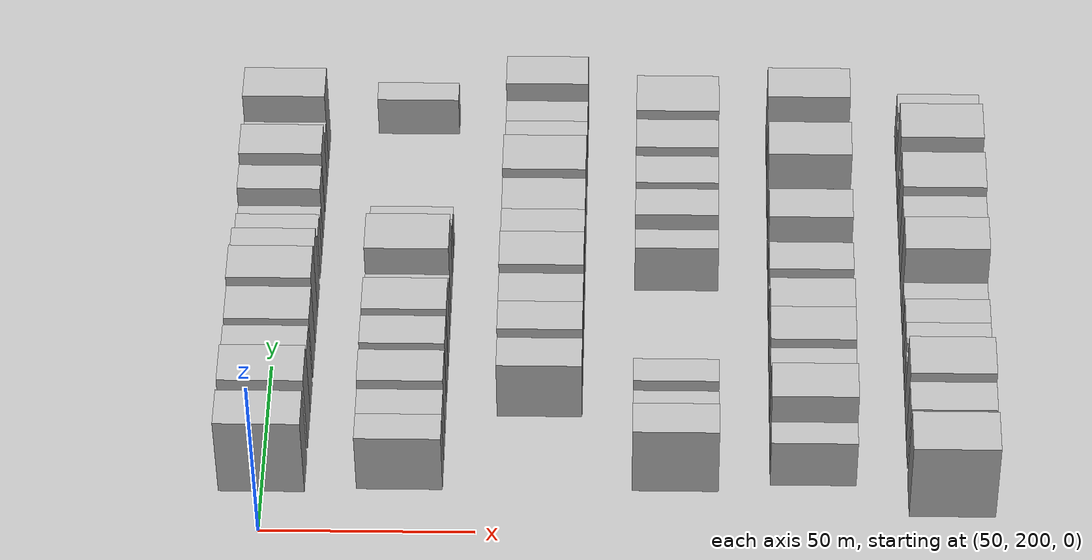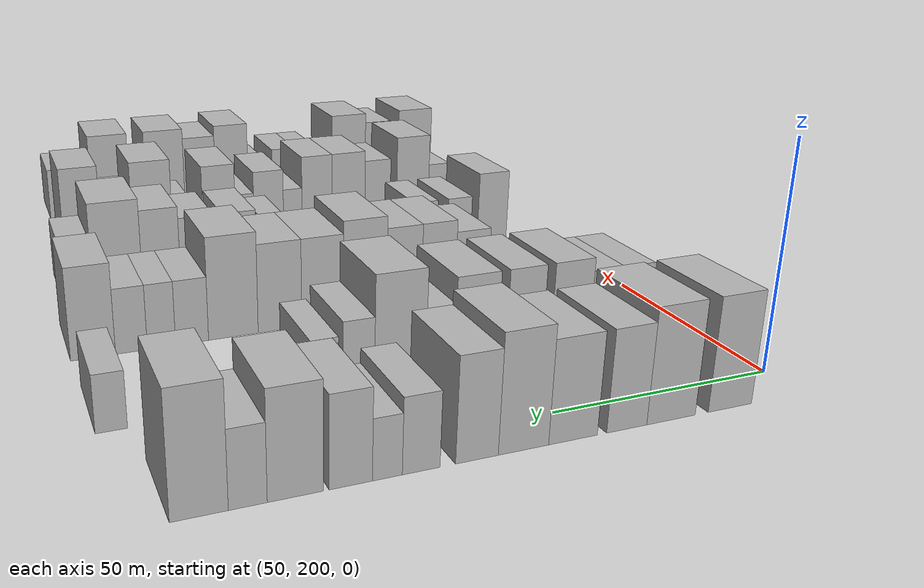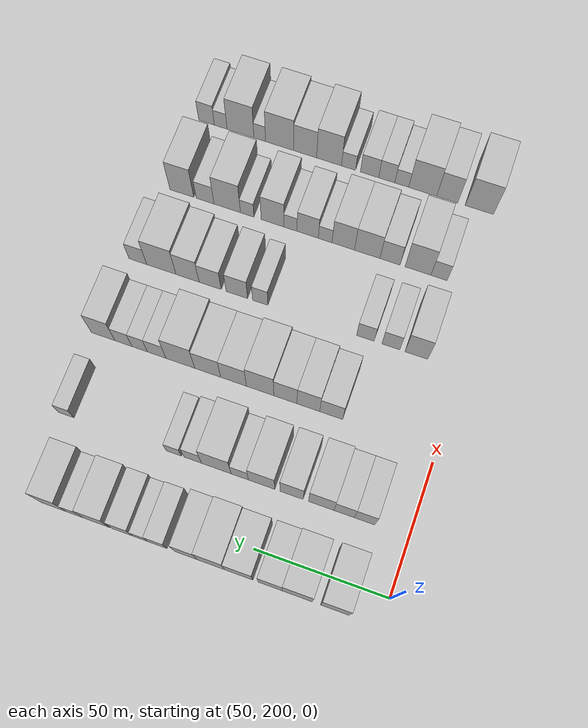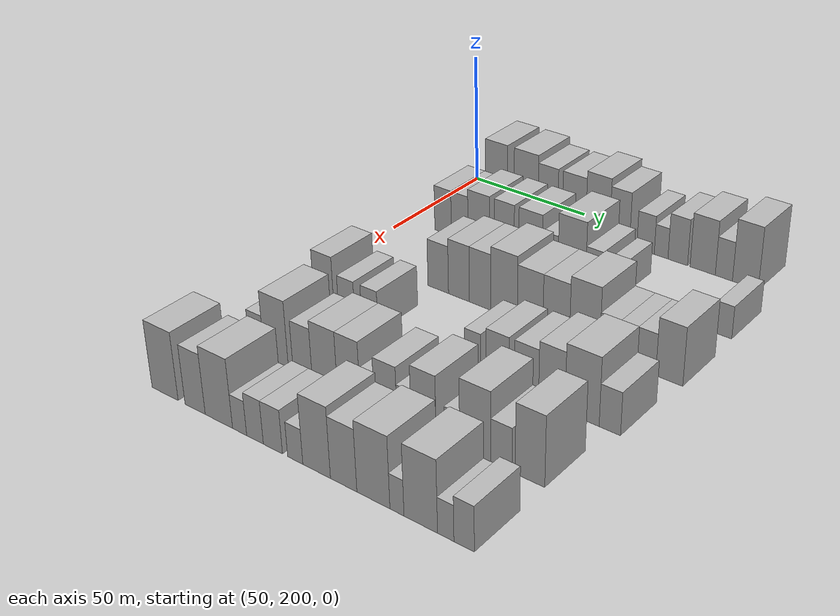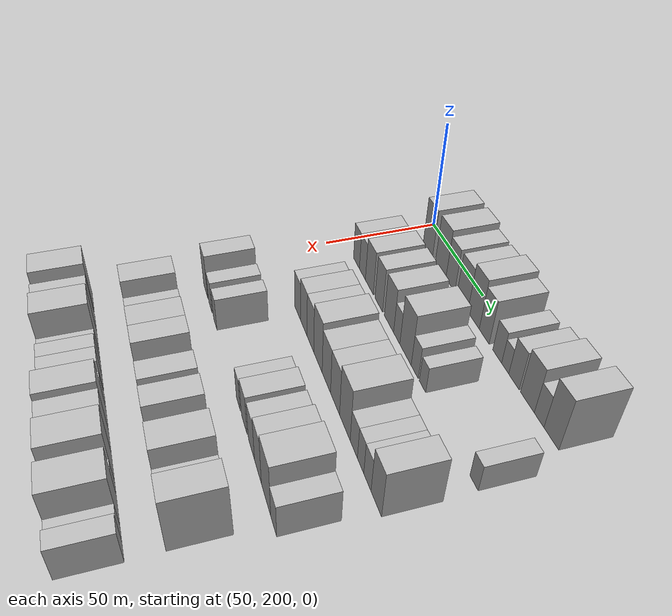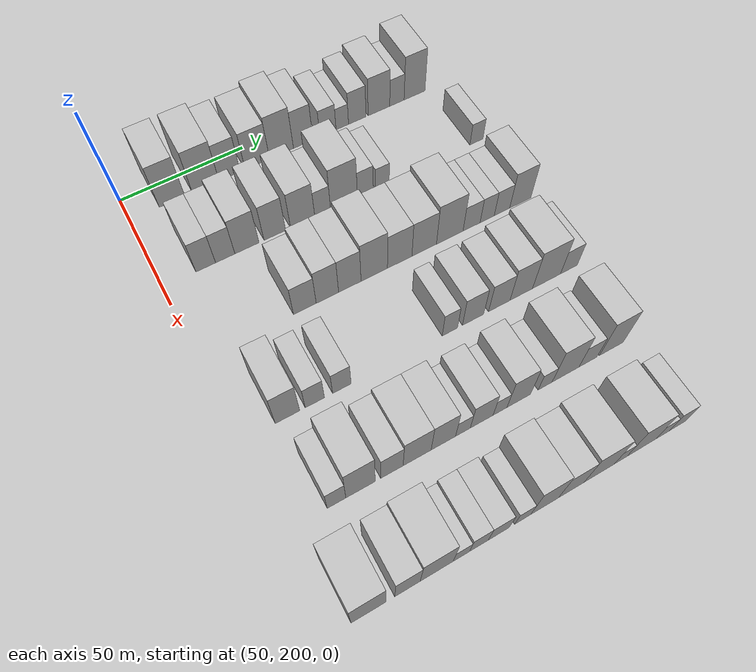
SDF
<sdf version="1.6">
 <world name="default">
  <model name="building_83">
   <static>1</static>
   <pose>50.0000 216.8281 0 0.000000 0.000000 0.000000</pose>
   <link name="link">
    <pose>0 0 12.00 0 0 0</pose>
    <collision name="collision"><geometry><box><size>20.0000 10.2045 24.0000</size></box></geometry></collision>
    <visual name="visual">
     <cast_shadows>0</cast_shadows>
     <geometry><box><size>20.0000 10.2045 24.0000</size></box></geometry>
     <material>
      <script>
       <uri>model://HANNAS_wall/materials/scripts</uri>
       <uri>model://HANNAS_wall/materials/textures</uri>
       <name>vrc/HANNAS_wall</name>
      </script>
     </material>
    </visual>
   </link>
  </model>
  <model name="building_84">
   <static>1</static>
   <pose>50.0000 230.3993 0 0.000000 0.000000 0.000000</pose>
   <link name="link">
    <pose>0 0 12.00 0 0 0</pose>
    <collision name="collision"><geometry><box><size>20.0000 10.9380 24.0000</size></box></geometry></collision>
    <visual name="visual">
     <cast_shadows>0</cast_shadows>
     <geometry><box><size>20.0000 10.9380 24.0000</size></box></geometry>
     <material>
      <script>
       <uri>model://HANNAS_wall/materials/scripts</uri>
       <uri>model://HANNAS_wall/materials/textures</uri>
       <name>vrc/HANNAS_wall</name>
      </script>
     </material>
    </visual>
   </link>
  </model>
  <model name="building_85">
   <static>1</static>
   <pose>50.0000 240.2554 0 0.000000 0.000000 0.000000</pose>
   <link name="link">
    <pose>0 0 10.50 0 0 0</pose>
    <collision name="collision"><geometry><box><size>20.0000 8.7741 21.0000</size></box></geometry></collision>
    <visual name="visual">
     <cast_shadows>0</cast_shadows>
     <geometry><box><size>20.0000 8.7741 21.0000</size></box></geometry>
     <material>
      <script>
       <uri>model://HANNAS_wall/materials/scripts</uri>
       <uri>model://HANNAS_wall/materials/textures</uri>
       <name>vrc/HANNAS_wall</name>
      </script>
     </material>
    </visual>
   </link>
  </model>
  <model name="building_86">
   <static>1</static>
   <pose>50.0000 251.7785 0 0.000000 0.000000 0.000000</pose>
   <link name="link">
    <pose>0 0 10.50 0 0 0</pose>
    <collision name="collision"><geometry><box><size>20.0000 10.2722 21.0000</size></box></geometry></collision>
    <visual name="visual">
     <cast_shadows>0</cast_shadows>
     <geometry><box><size>20.0000 10.2722 21.0000</size></box></geometry>
     <material>
      <script>
       <uri>model://HANNAS_wall/materials/scripts</uri>
       <uri>model://HANNAS_wall/materials/textures</uri>
       <name>vrc/HANNAS_wall</name>
      </script>
     </material>
    </visual>
   </link>
  </model>
  <model name="building_87">
   <static>1</static>
   <pose>50.0000 262.0372 0 0.000000 0.000000 0.000000</pose>
   <link name="link">
    <pose>0 0 12.00 0 0 0</pose>
    <collision name="collision"><geometry><box><size>20.0000 10.2452 24.0000</size></box></geometry></collision>
    <visual name="visual">
     <cast_shadows>0</cast_shadows>
     <geometry><box><size>20.0000 10.2452 24.0000</size></box></geometry>
     <material>
      <script>
       <uri>model://HANNAS_wall/materials/scripts</uri>
       <uri>model://HANNAS_wall/materials/textures</uri>
       <name>vrc/HANNAS_wall</name>
      </script>
     </material>
    </visual>
   </link>
  </model>
  <model name="building_88">
   <static>1</static>
   <pose>50.0000 271.3645 0 0.000000 0.000000 0.000000</pose>
   <link name="link">
    <pose>0 0 10.50 0 0 0</pose>
    <collision name="collision"><geometry><box><size>20.0000 8.4094 21.0000</size></box></geometry></collision>
    <visual name="visual">
     <cast_shadows>0</cast_shadows>
     <geometry><box><size>20.0000 8.4094 21.0000</size></box></geometry>
     <material>
      <script>
       <uri>model://HANNAS_wall/materials/scripts</uri>
       <uri>model://HANNAS_wall/materials/textures</uri>
       <name>vrc/HANNAS_wall</name>
      </script>
     </material>
    </visual>
   </link>
  </model>
  <model name="building_89">
   <static>1</static>
   <pose>50.0000 282.1505 0 0.000000 0.000000 0.000000</pose>
   <link name="link">
    <pose>0 0 7.50 0 0 0</pose>
    <collision name="collision"><geometry><box><size>20.0000 7.1627 15.0000</size></box></geometry></collision>
    <visual name="visual">
     <cast_shadows>0</cast_shadows>
     <geometry><box><size>20.0000 7.1627 15.0000</size></box></geometry>
     <material>
      <script>
       <uri>model://HANNAS_wall/materials/scripts</uri>
       <uri>model://HANNAS_wall/materials/textures</uri>
       <name>vrc/HANNAS_wall</name>
      </script>
     </material>
    </visual>
   </link>
  </model>
  <model name="building_90">
   <static>1</static>
   <pose>50.0000 288.5086 0 0.000000 0.000000 0.000000</pose>
   <link name="link">
    <pose>0 0 6.00 0 0 0</pose>
    <collision name="collision"><geometry><box><size>20.0000 5.5535 12.0000</size></box></geometry></collision>
    <visual name="visual">
     <cast_shadows>0</cast_shadows>
     <geometry><box><size>20.0000 5.5535 12.0000</size></box></geometry>
     <material>
      <script>
       <uri>model://HANNAS_wall/materials/scripts</uri>
       <uri>model://HANNAS_wall/materials/textures</uri>
       <name>vrc/HANNAS_wall</name>
      </script>
     </material>
    </visual>
   </link>
  </model>
  <model name="building_91">
   <static>1</static>
   <pose>50.0000 295.1970 0 0.000000 0.000000 0.000000</pose>
   <link name="link">
    <pose>0 0 9.00 0 0 0</pose>
    <collision name="collision"><geometry><box><size>20.0000 7.8232 18.0000</size></box></geometry></collision>
    <visual name="visual">
     <cast_shadows>0</cast_shadows>
     <geometry><box><size>20.0000 7.8232 18.0000</size></box></geometry>
     <material>
      <script>
       <uri>model://HANNAS_wall/materials/scripts</uri>
       <uri>model://HANNAS_wall/materials/textures</uri>
       <name>vrc/HANNAS_wall</name>
      </script>
     </material>
    </visual>
   </link>
  </model>
  <model name="building_92">
   <static>1</static>
   <pose>50.0000 305.0303 0 0.000000 0.000000 0.000000</pose>
   <link name="link">
    <pose>0 0 10.50 0 0 0</pose>
    <collision name="collision"><geometry><box><size>20.0000 9.8435 21.0000</size></box></geometry></collision>
    <visual name="visual">
     <cast_shadows>0</cast_shadows>
     <geometry><box><size>20.0000 9.8435 21.0000</size></box></geometry>
     <material>
      <script>
       <uri>model://HANNAS_wall/materials/scripts</uri>
       <uri>model://HANNAS_wall/materials/textures</uri>
       <name>vrc/HANNAS_wall</name>
      </script>
     </material>
    </visual>
   </link>
  </model>
  <model name="building_93">
   <static>1</static>
   <pose>50.0000 313.2530 0 0.000000 0.000000 0.000000</pose>
   <link name="link">
    <pose>0 0 7.50 0 0 0</pose>
    <collision name="collision"><geometry><box><size>20.0000 6.6019 15.0000</size></box></geometry></collision>
    <visual name="visual">
     <cast_shadows>0</cast_shadows>
     <geometry><box><size>20.0000 6.6019 15.0000</size></box></geometry>
     <material>
      <script>
       <uri>model://HANNAS_wall/materials/scripts</uri>
       <uri>model://HANNAS_wall/materials/textures</uri>
       <name>vrc/HANNAS_wall</name>
      </script>
     </material>
    </visual>
   </link>
  </model>
  <model name="building_94">
   <static>1</static>
   <pose>50.0000 321.4217 0 0.000000 0.000000 0.000000</pose>
   <link name="link">
    <pose>0 0 12.00 0 0 0</pose>
    <collision name="collision"><geometry><box><size>20.0000 9.7356 24.0000</size></box></geometry></collision>
    <visual name="visual">
     <cast_shadows>0</cast_shadows>
     <geometry><box><size>20.0000 9.7356 24.0000</size></box></geometry>
     <material>
      <script>
       <uri>model://HANNAS_wall/materials/scripts</uri>
       <uri>model://HANNAS_wall/materials/textures</uri>
       <name>vrc/HANNAS_wall</name>
      </script>
     </material>
    </visual>
   </link>
  </model>
  <model name="building_205">
   <static>1</static>
   <pose>82.0000 216.5580 0 0.000000 0.000000 0.000000</pose>
   <link name="link">
    <pose>0 0 9.00 0 0 0</pose>
    <collision name="collision"><geometry><box><size>20.0000 7.5804 18.0000</size></box></geometry></collision>
    <visual name="visual">
     <cast_shadows>0</cast_shadows>
     <geometry><box><size>20.0000 7.5804 18.0000</size></box></geometry>
     <material>
      <script>
       <uri>model://HANNAS_wall/materials/scripts</uri>
       <uri>model://HANNAS_wall/materials/textures</uri>
       <name>vrc/HANNAS_wall</name>
      </script>
     </material>
    </visual>
   </link>
  </model>
  <model name="building_206">
   <static>1</static>
   <pose>82.0000 224.1170 0 0.000000 0.000000 0.000000</pose>
   <link name="link">
    <pose>0 0 9.00 0 0 0</pose>
    <collision name="collision"><geometry><box><size>20.0000 7.5375 18.0000</size></box></geometry></collision>
    <visual name="visual">
     <cast_shadows>0</cast_shadows>
     <geometry><box><size>20.0000 7.5375 18.0000</size></box></geometry>
     <material>
      <script>
       <uri>model://HANNAS_wall/materials/scripts</uri>
       <uri>model://HANNAS_wall/materials/textures</uri>
       <name>vrc/HANNAS_wall</name>
      </script>
     </material>
    </visual>
   </link>
  </model>
  <model name="building_207">
   <static>1</static>
   <pose>82.0000 232.6587 0 0.000000 0.000000 0.000000</pose>
   <link name="link">
    <pose>0 0 10.50 0 0 0</pose>
    <collision name="collision"><geometry><box><size>20.0000 9.5459 21.0000</size></box></geometry></collision>
    <visual name="visual">
     <cast_shadows>0</cast_shadows>
     <geometry><box><size>20.0000 9.5459 21.0000</size></box></geometry>
     <material>
      <script>
       <uri>model://HANNAS_wall/materials/scripts</uri>
       <uri>model://HANNAS_wall/materials/textures</uri>
       <name>vrc/HANNAS_wall</name>
      </script>
     </material>
    </visual>
   </link>
  </model>
  <model name="building_208">
   <static>1</static>
   <pose>82.0000 243.7751 0 0.000000 0.000000 0.000000</pose>
   <link name="link">
    <pose>0 0 10.50 0 0 0</pose>
    <collision name="collision"><geometry><box><size>20.0000 8.6867 21.0000</size></box></geometry></collision>
    <visual name="visual">
     <cast_shadows>0</cast_shadows>
     <geometry><box><size>20.0000 8.6867 21.0000</size></box></geometry>
     <material>
      <script>
       <uri>model://HANNAS_wall/materials/scripts</uri>
       <uri>model://HANNAS_wall/materials/textures</uri>
       <name>vrc/HANNAS_wall</name>
      </script>
     </material>
    </visual>
   </link>
  </model>
  <model name="building_209">
   <static>1</static>
   <pose>82.0000 255.0860 0 0.000000 0.000000 0.000000</pose>
   <link name="link">
    <pose>0 0 10.50 0 0 0</pose>
    <collision name="collision"><geometry><box><size>20.0000 9.9352 21.0000</size></box></geometry></collision>
    <visual name="visual">
     <cast_shadows>0</cast_shadows>
     <geometry><box><size>20.0000 9.9352 21.0000</size></box></geometry>
     <material>
      <script>
       <uri>model://HANNAS_wall/materials/scripts</uri>
       <uri>model://HANNAS_wall/materials/textures</uri>
       <name>vrc/HANNAS_wall</name>
      </script>
     </material>
    </visual>
   </link>
  </model>
  <model name="building_210">
   <static>1</static>
   <pose>82.0000 263.3254 0 0.000000 0.000000 0.000000</pose>
   <link name="link">
    <pose>0 0 7.50 0 0 0</pose>
    <collision name="collision"><geometry><box><size>20.0000 6.5435 15.0000</size></box></geometry></collision>
    <visual name="visual">
     <cast_shadows>0</cast_shadows>
     <geometry><box><size>20.0000 6.5435 15.0000</size></box></geometry>
     <material>
      <script>
       <uri>model://HANNAS_wall/materials/scripts</uri>
       <uri>model://HANNAS_wall/materials/textures</uri>
       <name>vrc/HANNAS_wall</name>
      </script>
     </material>
    </visual>
   </link>
  </model>
  <model name="building_211">
   <static>1</static>
   <pose>82.0000 272.2453 0 0.000000 0.000000 0.000000</pose>
   <link name="link">
    <pose>0 0 12.00 0 0 0</pose>
    <collision name="collision"><geometry><box><size>20.0000 11.2963 24.0000</size></box></geometry></collision>
    <visual name="visual">
     <cast_shadows>0</cast_shadows>
     <geometry><box><size>20.0000 11.2963 24.0000</size></box></geometry>
     <material>
      <script>
       <uri>model://HANNAS_wall/materials/scripts</uri>
       <uri>model://HANNAS_wall/materials/textures</uri>
       <name>vrc/HANNAS_wall</name>
      </script>
     </material>
    </visual>
   </link>
  </model>
  <model name="building_212">
   <static>1</static>
   <pose>82.0000 281.2649 0 0.000000 0.000000 0.000000</pose>
   <link name="link">
    <pose>0 0 7.50 0 0 0</pose>
    <collision name="collision"><geometry><box><size>20.0000 6.7428 15.0000</size></box></geometry></collision>
    <visual name="visual">
     <cast_shadows>0</cast_shadows>
     <geometry><box><size>20.0000 6.7428 15.0000</size></box></geometry>
     <material>
      <script>
       <uri>model://HANNAS_wall/materials/scripts</uri>
       <uri>model://HANNAS_wall/materials/textures</uri>
       <name>vrc/HANNAS_wall</name>
      </script>
     </material>
    </visual>
   </link>
  </model>
  <model name="building_213">
   <static>1</static>
   <pose>82.0000 288.5654 0 0.000000 0.000000 0.000000</pose>
   <link name="link">
    <pose>0 0 6.00 0 0 0</pose>
    <collision name="collision"><geometry><box><size>20.0000 5.8582 12.0000</size></box></geometry></collision>
    <visual name="visual">
     <cast_shadows>0</cast_shadows>
     <geometry><box><size>20.0000 5.8582 12.0000</size></box></geometry>
     <material>
      <script>
       <uri>model://HANNAS_wall/materials/scripts</uri>
       <uri>model://HANNAS_wall/materials/textures</uri>
       <name>vrc/HANNAS_wall</name>
      </script>
     </material>
    </visual>
   </link>
  </model>
  <model name="building_214">
   <static>1</static>
   <pose>82.0000 330.4906 0 0.000000 0.000000 0.000000</pose>
   <link name="link">
    <pose>0 0 6.00 0 0 0</pose>
    <collision name="collision"><geometry><box><size>20.0000 5.9974 12.0000</size></box></geometry></collision>
    <visual name="visual">
     <cast_shadows>0</cast_shadows>
     <geometry><box><size>20.0000 5.9974 12.0000</size></box></geometry>
     <material>
      <script>
       <uri>model://HANNAS_wall/materials/scripts</uri>
       <uri>model://HANNAS_wall/materials/textures</uri>
       <name>vrc/HANNAS_wall</name>
      </script>
     </material>
    </visual>
   </link>
  </model>
  <model name="building_314">
   <static>1</static>
   <pose>114.0000 239.8226 0 0.000000 0.000000 0.000000</pose>
   <link name="link">
    <pose>0 0 9.00 0 0 0</pose>
    <collision name="collision"><geometry><box><size>20.0000 8.7964 18.0000</size></box></geometry></collision>
    <visual name="visual">
     <cast_shadows>0</cast_shadows>
     <geometry><box><size>20.0000 8.7964 18.0000</size></box></geometry>
     <material>
      <script>
       <uri>model://HANNAS_wall/materials/scripts</uri>
       <uri>model://HANNAS_wall/materials/textures</uri>
       <name>vrc/HANNAS_wall</name>
      </script>
     </material>
    </visual>
   </link>
  </model>
  <model name="building_315">
   <static>1</static>
   <pose>114.0000 248.6138 0 0.000000 0.000000 0.000000</pose>
   <link name="link">
    <pose>0 0 10.50 0 0 0</pose>
    <collision name="collision"><geometry><box><size>20.0000 8.7861 21.0000</size></box></geometry></collision>
    <visual name="visual">
     <cast_shadows>0</cast_shadows>
     <geometry><box><size>20.0000 8.7861 21.0000</size></box></geometry>
     <material>
      <script>
       <uri>model://HANNAS_wall/materials/scripts</uri>
       <uri>model://HANNAS_wall/materials/textures</uri>
       <name>vrc/HANNAS_wall</name>
      </script>
     </material>
    </visual>
   </link>
  </model>
  <model name="building_316">
   <static>1</static>
   <pose>114.0000 257.4664 0 0.000000 0.000000 0.000000</pose>
   <link name="link">
    <pose>0 0 10.50 0 0 0</pose>
    <collision name="collision"><geometry><box><size>20.0000 8.9191 21.0000</size></box></geometry></collision>
    <visual name="visual">
     <cast_shadows>0</cast_shadows>
     <geometry><box><size>20.0000 8.9191 21.0000</size></box></geometry>
     <material>
      <script>
       <uri>model://HANNAS_wall/materials/scripts</uri>
       <uri>model://HANNAS_wall/materials/textures</uri>
       <name>vrc/HANNAS_wall</name>
      </script>
     </material>
    </visual>
   </link>
  </model>
  <model name="building_317">
   <static>1</static>
   <pose>114.0000 267.2604 0 0.000000 0.000000 0.000000</pose>
   <link name="link">
    <pose>0 0 12.00 0 0 0</pose>
    <collision name="collision"><geometry><box><size>20.0000 10.6688 24.0000</size></box></geometry></collision>
    <visual name="visual">
     <cast_shadows>0</cast_shadows>
     <geometry><box><size>20.0000 10.6688 24.0000</size></box></geometry>
     <material>
      <script>
       <uri>model://HANNAS_wall/materials/scripts</uri>
       <uri>model://HANNAS_wall/materials/textures</uri>
       <name>vrc/HANNAS_wall</name>
      </script>
     </material>
    </visual>
   </link>
  </model>
  <model name="building_318">
   <static>1</static>
   <pose>114.0000 277.6326 0 0.000000 0.000000 0.000000</pose>
   <link name="link">
    <pose>0 0 10.50 0 0 0</pose>
    <collision name="collision"><geometry><box><size>20.0000 10.0757 21.0000</size></box></geometry></collision>
    <visual name="visual">
     <cast_shadows>0</cast_shadows>
     <geometry><box><size>20.0000 10.0757 21.0000</size></box></geometry>
     <material>
      <script>
       <uri>model://HANNAS_wall/materials/scripts</uri>
       <uri>model://HANNAS_wall/materials/textures</uri>
       <name>vrc/HANNAS_wall</name>
      </script>
     </material>
    </visual>
   </link>
  </model>
  <model name="building_319">
   <static>1</static>
   <pose>114.0000 287.7949 0 0.000000 0.000000 0.000000</pose>
   <link name="link">
    <pose>0 0 10.50 0 0 0</pose>
    <collision name="collision"><geometry><box><size>20.0000 10.2488 21.0000</size></box></geometry></collision>
    <visual name="visual">
     <cast_shadows>0</cast_shadows>
     <geometry><box><size>20.0000 10.2488 21.0000</size></box></geometry>
     <material>
      <script>
       <uri>model://HANNAS_wall/materials/scripts</uri>
       <uri>model://HANNAS_wall/materials/textures</uri>
       <name>vrc/HANNAS_wall</name>
      </script>
     </material>
    </visual>
   </link>
  </model>
  <model name="building_320">
   <static>1</static>
   <pose>114.0000 298.5970 0 0.000000 0.000000 0.000000</pose>
   <link name="link">
    <pose>0 0 12.00 0 0 0</pose>
    <collision name="collision"><geometry><box><size>20.0000 11.3553 24.0000</size></box></geometry></collision>
    <visual name="visual">
     <cast_shadows>0</cast_shadows>
     <geometry><box><size>20.0000 11.3553 24.0000</size></box></geometry>
     <material>
      <script>
       <uri>model://HANNAS_wall/materials/scripts</uri>
       <uri>model://HANNAS_wall/materials/textures</uri>
       <name>vrc/HANNAS_wall</name>
      </script>
     </material>
    </visual>
   </link>
  </model>
  <model name="building_321">
   <static>1</static>
   <pose>114.0000 307.9433 0 0.000000 0.000000 0.000000</pose>
   <link name="link">
    <pose>0 0 7.50 0 0 0</pose>
    <collision name="collision"><geometry><box><size>20.0000 7.3373 15.0000</size></box></geometry></collision>
    <visual name="visual">
     <cast_shadows>0</cast_shadows>
     <geometry><box><size>20.0000 7.3373 15.0000</size></box></geometry>
     <material>
      <script>
       <uri>model://HANNAS_wall/materials/scripts</uri>
       <uri>model://HANNAS_wall/materials/textures</uri>
       <name>vrc/HANNAS_wall</name>
      </script>
     </material>
    </visual>
   </link>
  </model>
  <model name="building_322">
   <static>1</static>
   <pose>114.0000 314.7021 0 0.000000 0.000000 0.000000</pose>
   <link name="link">
    <pose>0 0 7.50 0 0 0</pose>
    <collision name="collision"><geometry><box><size>20.0000 6.1803 15.0000</size></box></geometry></collision>
    <visual name="visual">
     <cast_shadows>0</cast_shadows>
     <geometry><box><size>20.0000 6.1803 15.0000</size></box></geometry>
     <material>
      <script>
       <uri>model://HANNAS_wall/materials/scripts</uri>
       <uri>model://HANNAS_wall/materials/textures</uri>
       <name>vrc/HANNAS_wall</name>
      </script>
     </material>
    </visual>
   </link>
  </model>
  <model name="building_323">
   <static>1</static>
   <pose>114.0000 321.2119 0 0.000000 0.000000 0.000000</pose>
   <link name="link">
    <pose>0 0 7.50 0 0 0</pose>
    <collision name="collision"><geometry><box><size>20.0000 6.8393 15.0000</size></box></geometry></collision>
    <visual name="visual">
     <cast_shadows>0</cast_shadows>
     <geometry><box><size>20.0000 6.8393 15.0000</size></box></geometry>
     <material>
      <script>
       <uri>model://HANNAS_wall/materials/scripts</uri>
       <uri>model://HANNAS_wall/materials/textures</uri>
       <name>vrc/HANNAS_wall</name>
      </script>
     </material>
    </visual>
   </link>
  </model>
  <model name="building_324">
   <static>1</static>
   <pose>114.0000 329.3617 0 0.000000 0.000000 0.000000</pose>
   <link name="link">
    <pose>0 0 10.50 0 0 0</pose>
    <collision name="collision"><geometry><box><size>20.0000 9.4604 21.0000</size></box></geometry></collision>
    <visual name="visual">
     <cast_shadows>0</cast_shadows>
     <geometry><box><size>20.0000 9.4604 21.0000</size></box></geometry>
     <material>
      <script>
       <uri>model://HANNAS_wall/materials/scripts</uri>
       <uri>model://HANNAS_wall/materials/textures</uri>
       <name>vrc/HANNAS_wall</name>
      </script>
     </material>
    </visual>
   </link>
  </model>
  <model name="building_422">
   <static>1</static>
   <pose>146.0000 217.4311 0 0.000000 0.000000 0.000000</pose>
   <link name="link">
    <pose>0 0 10.50 0 0 0</pose>
    <collision name="collision"><geometry><box><size>20.0000 8.8108 21.0000</size></box></geometry></collision>
    <visual name="visual">
     <cast_shadows>0</cast_shadows>
     <geometry><box><size>20.0000 8.8108 21.0000</size></box></geometry>
     <material>
      <script>
       <uri>model://HANNAS_wall/materials/scripts</uri>
       <uri>model://HANNAS_wall/materials/textures</uri>
       <name>vrc/HANNAS_wall</name>
      </script>
     </material>
    </visual>
   </link>
  </model>
  <model name="building_423">
   <static>1</static>
   <pose>146.0000 227.3429 0 0.000000 0.000000 0.000000</pose>
   <link name="link">
    <pose>0 0 7.50 0 0 0</pose>
    <collision name="collision"><geometry><box><size>20.0000 7.0128 15.0000</size></box></geometry></collision>
    <visual name="visual">
     <cast_shadows>0</cast_shadows>
     <geometry><box><size>20.0000 7.0128 15.0000</size></box></geometry>
     <material>
      <script>
       <uri>model://HANNAS_wall/materials/scripts</uri>
       <uri>model://HANNAS_wall/materials/textures</uri>
       <name>vrc/HANNAS_wall</name>
      </script>
     </material>
    </visual>
   </link>
  </model>
  <model name="building_424">
   <static>1</static>
   <pose>146.0000 237.2827 0 0.000000 0.000000 0.000000</pose>
   <link name="link">
    <pose>0 0 7.50 0 0 0</pose>
    <collision name="collision"><geometry><box><size>20.0000 6.8669 15.0000</size></box></geometry></collision>
    <visual name="visual">
     <cast_shadows>0</cast_shadows>
     <geometry><box><size>20.0000 6.8669 15.0000</size></box></geometry>
     <material>
      <script>
       <uri>model://HANNAS_wall/materials/scripts</uri>
       <uri>model://HANNAS_wall/materials/textures</uri>
       <name>vrc/HANNAS_wall</name>
      </script>
     </material>
    </visual>
   </link>
  </model>
  <model name="building_425">
   <static>1</static>
   <pose>146.0000 278.8688 0 0.000000 0.000000 0.000000</pose>
   <link name="link">
    <pose>0 0 7.50 0 0 0</pose>
    <collision name="collision"><geometry><box><size>20.0000 6.1018 15.0000</size></box></geometry></collision>
    <visual name="visual">
     <cast_shadows>0</cast_shadows>
     <geometry><box><size>20.0000 6.1018 15.0000</size></box></geometry>
     <material>
      <script>
       <uri>model://HANNAS_wall/materials/scripts</uri>
       <uri>model://HANNAS_wall/materials/textures</uri>
       <name>vrc/HANNAS_wall</name>
      </script>
     </material>
    </visual>
   </link>
  </model>
  <model name="building_426">
   <static>1</static>
   <pose>146.0000 288.2239 0 0.000000 0.000000 0.000000</pose>
   <link name="link">
    <pose>0 0 9.00 0 0 0</pose>
    <collision name="collision"><geometry><box><size>20.0000 8.6084 18.0000</size></box></geometry></collision>
    <visual name="visual">
     <cast_shadows>0</cast_shadows>
     <geometry><box><size>20.0000 8.6084 18.0000</size></box></geometry>
     <material>
      <script>
       <uri>model://HANNAS_wall/materials/scripts</uri>
       <uri>model://HANNAS_wall/materials/textures</uri>
       <name>vrc/HANNAS_wall</name>
      </script>
     </material>
    </visual>
   </link>
  </model>
  <model name="building_427">
   <static>1</static>
   <pose>146.0000 298.9796 0 0.000000 0.000000 0.000000</pose>
   <link name="link">
    <pose>0 0 9.00 0 0 0</pose>
    <collision name="collision"><geometry><box><size>20.0000 8.9030 18.0000</size></box></geometry></collision>
    <visual name="visual">
     <cast_shadows>0</cast_shadows>
     <geometry><box><size>20.0000 8.9030 18.0000</size></box></geometry>
     <material>
      <script>
       <uri>model://HANNAS_wall/materials/scripts</uri>
       <uri>model://HANNAS_wall/materials/textures</uri>
       <name>vrc/HANNAS_wall</name>
      </script>
     </material>
    </visual>
   </link>
  </model>
  <model name="building_428">
   <static>1</static>
   <pose>146.0000 308.1440 0 0.000000 0.000000 0.000000</pose>
   <link name="link">
    <pose>0 0 10.50 0 0 0</pose>
    <collision name="collision"><geometry><box><size>20.0000 9.4257 21.0000</size></box></geometry></collision>
    <visual name="visual">
     <cast_shadows>0</cast_shadows>
     <geometry><box><size>20.0000 9.4257 21.0000</size></box></geometry>
     <material>
      <script>
       <uri>model://HANNAS_wall/materials/scripts</uri>
       <uri>model://HANNAS_wall/materials/textures</uri>
       <name>vrc/HANNAS_wall</name>
      </script>
     </material>
    </visual>
   </link>
  </model>
  <model name="building_429">
   <static>1</static>
   <pose>146.0000 318.8328 0 0.000000 0.000000 0.000000</pose>
   <link name="link">
    <pose>0 0 12.00 0 0 0</pose>
    <collision name="collision"><geometry><box><size>20.0000 11.9521 24.0000</size></box></geometry></collision>
    <visual name="visual">
     <cast_shadows>0</cast_shadows>
     <geometry><box><size>20.0000 11.9521 24.0000</size></box></geometry>
     <material>
      <script>
       <uri>model://HANNAS_wall/materials/scripts</uri>
       <uri>model://HANNAS_wall/materials/textures</uri>
       <name>vrc/HANNAS_wall</name>
      </script>
     </material>
    </visual>
   </link>
  </model>
  <model name="building_430">
   <static>1</static>
   <pose>146.0000 328.4493 0 0.000000 0.000000 0.000000</pose>
   <link name="link">
    <pose>0 0 7.50 0 0 0</pose>
    <collision name="collision"><geometry><box><size>20.0000 7.2808 15.0000</size></box></geometry></collision>
    <visual name="visual">
     <cast_shadows>0</cast_shadows>
     <geometry><box><size>20.0000 7.2808 15.0000</size></box></geometry>
     <material>
      <script>
       <uri>model://HANNAS_wall/materials/scripts</uri>
       <uri>model://HANNAS_wall/materials/textures</uri>
       <name>vrc/HANNAS_wall</name>
      </script>
     </material>
    </visual>
   </link>
  </model>
  <model name="building_539">
   <static>1</static>
   <pose>178.0000 218.4253 0 0.000000 0.000000 0.000000</pose>
   <link name="link">
    <pose>0 0 7.50 0 0 0</pose>
    <collision name="collision"><geometry><box><size>20.0000 6.4609 15.0000</size></box></geometry></collision>
    <visual name="visual">
     <cast_shadows>0</cast_shadows>
     <geometry><box><size>20.0000 6.4609 15.0000</size></box></geometry>
     <material>
      <script>
       <uri>model://HANNAS_wall/materials/scripts</uri>
       <uri>model://HANNAS_wall/materials/textures</uri>
       <name>vrc/HANNAS_wall</name>
      </script>
     </material>
    </visual>
   </link>
  </model>
  <model name="building_540">
   <static>1</static>
   <pose>178.0000 226.7966 0 0.000000 0.000000 0.000000</pose>
   <link name="link">
    <pose>0 0 12.00 0 0 0</pose>
    <collision name="collision"><geometry><box><size>20.0000 10.2817 24.0000</size></box></geometry></collision>
    <visual name="visual">
     <cast_shadows>0</cast_shadows>
     <geometry><box><size>20.0000 10.2817 24.0000</size></box></geometry>
     <material>
      <script>
       <uri>model://HANNAS_wall/materials/scripts</uri>
       <uri>model://HANNAS_wall/materials/textures</uri>
       <name>vrc/HANNAS_wall</name>
      </script>
     </material>
    </visual>
   </link>
  </model>
  <model name="building_541">
   <static>1</static>
   <pose>178.0000 237.9258 0 0.000000 0.000000 0.000000</pose>
   <link name="link">
    <pose>0 0 9.00 0 0 0</pose>
    <collision name="collision"><geometry><box><size>20.0000 7.9769 18.0000</size></box></geometry></collision>
    <visual name="visual">
     <cast_shadows>0</cast_shadows>
     <geometry><box><size>20.0000 7.9769 18.0000</size></box></geometry>
     <material>
      <script>
       <uri>model://HANNAS_wall/materials/scripts</uri>
       <uri>model://HANNAS_wall/materials/textures</uri>
       <name>vrc/HANNAS_wall</name>
      </script>
     </material>
    </visual>
   </link>
  </model>
  <model name="building_542">
   <static>1</static>
   <pose>178.0000 247.0427 0 0.000000 0.000000 0.000000</pose>
   <link name="link">
    <pose>0 0 10.50 0 0 0</pose>
    <collision name="collision"><geometry><box><size>20.0000 10.2568 21.0000</size></box></geometry></collision>
    <visual name="visual">
     <cast_shadows>0</cast_shadows>
     <geometry><box><size>20.0000 10.2568 21.0000</size></box></geometry>
     <material>
      <script>
       <uri>model://HANNAS_wall/materials/scripts</uri>
       <uri>model://HANNAS_wall/materials/textures</uri>
       <name>vrc/HANNAS_wall</name>
      </script>
     </material>
    </visual>
   </link>
  </model>
  <model name="building_543">
   <static>1</static>
   <pose>178.0000 256.7063 0 0.000000 0.000000 0.000000</pose>
   <link name="link">
    <pose>0 0 10.50 0 0 0</pose>
    <collision name="collision"><geometry><box><size>20.0000 9.0706 21.0000</size></box></geometry></collision>
    <visual name="visual">
     <cast_shadows>0</cast_shadows>
     <geometry><box><size>20.0000 9.0706 21.0000</size></box></geometry>
     <material>
      <script>
       <uri>model://HANNAS_wall/materials/scripts</uri>
       <uri>model://HANNAS_wall/materials/textures</uri>
       <name>vrc/HANNAS_wall</name>
      </script>
     </material>
    </visual>
   </link>
  </model>
  <model name="building_544">
   <static>1</static>
   <pose>178.0000 264.0158 0 0.000000 0.000000 0.000000</pose>
   <link name="link">
    <pose>0 0 6.00 0 0 0</pose>
    <collision name="collision"><geometry><box><size>20.0000 5.5484 12.0000</size></box></geometry></collision>
    <visual name="visual">
     <cast_shadows>0</cast_shadows>
     <geometry><box><size>20.0000 5.5484 12.0000</size></box></geometry>
     <material>
      <script>
       <uri>model://HANNAS_wall/materials/scripts</uri>
       <uri>model://HANNAS_wall/materials/textures</uri>
       <name>vrc/HANNAS_wall</name>
      </script>
     </material>
    </visual>
   </link>
  </model>
  <model name="building_545">
   <static>1</static>
   <pose>178.0000 271.1369 0 0.000000 0.000000 0.000000</pose>
   <link name="link">
    <pose>0 0 9.00 0 0 0</pose>
    <collision name="collision"><geometry><box><size>20.0000 8.6938 18.0000</size></box></geometry></collision>
    <visual name="visual">
     <cast_shadows>0</cast_shadows>
     <geometry><box><size>20.0000 8.6938 18.0000</size></box></geometry>
     <material>
      <script>
       <uri>model://HANNAS_wall/materials/scripts</uri>
       <uri>model://HANNAS_wall/materials/textures</uri>
       <name>vrc/HANNAS_wall</name>
      </script>
     </material>
    </visual>
   </link>
  </model>
  <model name="building_546">
   <static>1</static>
   <pose>178.0000 278.1693 0 0.000000 0.000000 0.000000</pose>
   <link name="link">
    <pose>0 0 6.00 0 0 0</pose>
    <collision name="collision"><geometry><box><size>20.0000 5.3710 12.0000</size></box></geometry></collision>
    <visual name="visual">
     <cast_shadows>0</cast_shadows>
     <geometry><box><size>20.0000 5.3710 12.0000</size></box></geometry>
     <material>
      <script>
       <uri>model://HANNAS_wall/materials/scripts</uri>
       <uri>model://HANNAS_wall/materials/textures</uri>
       <name>vrc/HANNAS_wall</name>
      </script>
     </material>
    </visual>
   </link>
  </model>
  <model name="building_547">
   <static>1</static>
   <pose>178.0000 285.4806 0 0.000000 0.000000 0.000000</pose>
   <link name="link">
    <pose>0 0 10.50 0 0 0</pose>
    <collision name="collision"><geometry><box><size>20.0000 9.2515 21.0000</size></box></geometry></collision>
    <visual name="visual">
     <cast_shadows>0</cast_shadows>
     <geometry><box><size>20.0000 9.2515 21.0000</size></box></geometry>
     <material>
      <script>
       <uri>model://HANNAS_wall/materials/scripts</uri>
       <uri>model://HANNAS_wall/materials/textures</uri>
       <name>vrc/HANNAS_wall</name>
      </script>
     </material>
    </visual>
   </link>
  </model>
  <model name="building_548">
   <static>1</static>
   <pose>178.0000 295.8750 0 0.000000 0.000000 0.000000</pose>
   <link name="link">
    <pose>0 0 6.00 0 0 0</pose>
    <collision name="collision"><geometry><box><size>20.0000 5.5372 12.0000</size></box></geometry></collision>
    <visual name="visual">
     <cast_shadows>0</cast_shadows>
     <geometry><box><size>20.0000 5.5372 12.0000</size></box></geometry>
     <material>
      <script>
       <uri>model://HANNAS_wall/materials/scripts</uri>
       <uri>model://HANNAS_wall/materials/textures</uri>
       <name>vrc/HANNAS_wall</name>
      </script>
     </material>
    </visual>
   </link>
  </model>
  <model name="building_549">
   <static>1</static>
   <pose>178.0000 304.1027 0 0.000000 0.000000 0.000000</pose>
   <link name="link">
    <pose>0 0 12.00 0 0 0</pose>
    <collision name="collision"><geometry><box><size>20.0000 10.9182 24.0000</size></box></geometry></collision>
    <visual name="visual">
     <cast_shadows>0</cast_shadows>
     <geometry><box><size>20.0000 10.9182 24.0000</size></box></geometry>
     <material>
      <script>
       <uri>model://HANNAS_wall/materials/scripts</uri>
       <uri>model://HANNAS_wall/materials/textures</uri>
       <name>vrc/HANNAS_wall</name>
      </script>
     </material>
    </visual>
   </link>
  </model>
  <model name="building_550">
   <static>1</static>
   <pose>178.0000 313.2603 0 0.000000 0.000000 0.000000</pose>
   <link name="link">
    <pose>0 0 7.50 0 0 0</pose>
    <collision name="collision"><geometry><box><size>20.0000 7.3970 15.0000</size></box></geometry></collision>
    <visual name="visual">
     <cast_shadows>0</cast_shadows>
     <geometry><box><size>20.0000 7.3970 15.0000</size></box></geometry>
     <material>
      <script>
       <uri>model://HANNAS_wall/materials/scripts</uri>
       <uri>model://HANNAS_wall/materials/textures</uri>
       <name>vrc/HANNAS_wall</name>
      </script>
     </material>
    </visual>
   </link>
  </model>
  <model name="building_551">
   <static>1</static>
   <pose>178.0000 322.9404 0 0.000000 0.000000 0.000000</pose>
   <link name="link">
    <pose>0 0 12.00 0 0 0</pose>
    <collision name="collision"><geometry><box><size>20.0000 9.9632 24.0000</size></box></geometry></collision>
    <visual name="visual">
     <cast_shadows>0</cast_shadows>
     <geometry><box><size>20.0000 9.9632 24.0000</size></box></geometry>
     <material>
      <script>
       <uri>model://HANNAS_wall/materials/scripts</uri>
       <uri>model://HANNAS_wall/materials/textures</uri>
       <name>vrc/HANNAS_wall</name>
      </script>
     </material>
    </visual>
   </link>
  </model>
  <model name="building_650">
   <static>1</static>
   <pose>210.0000 211.8995 0 0.000000 0.000000 0.000000</pose>
   <link name="link">
    <pose>0 0 12.00 0 0 0</pose>
    <collision name="collision"><geometry><box><size>20.0000 11.3964 24.0000</size></box></geometry></collision>
    <visual name="visual">
     <cast_shadows>0</cast_shadows>
     <geometry><box><size>20.0000 11.3964 24.0000</size></box></geometry>
     <material>
      <script>
       <uri>model://HANNAS_wall/materials/scripts</uri>
       <uri>model://HANNAS_wall/materials/textures</uri>
       <name>vrc/HANNAS_wall</name>
      </script>
     </material>
    </visual>
   </link>
  </model>
  <model name="building_651">
   <static>1</static>
   <pose>210.0000 224.8836 0 0.000000 0.000000 0.000000</pose>
   <link name="link">
    <pose>0 0 10.50 0 0 0</pose>
    <collision name="collision"><geometry><box><size>20.0000 8.5717 21.0000</size></box></geometry></collision>
    <visual name="visual">
     <cast_shadows>0</cast_shadows>
     <geometry><box><size>20.0000 8.5717 21.0000</size></box></geometry>
     <material>
      <script>
       <uri>model://HANNAS_wall/materials/scripts</uri>
       <uri>model://HANNAS_wall/materials/textures</uri>
       <name>vrc/HANNAS_wall</name>
      </script>
     </material>
    </visual>
   </link>
  </model>
  <model name="building_652">
   <static>1</static>
   <pose>210.0000 234.8433 0 0.000000 0.000000 0.000000</pose>
   <link name="link">
    <pose>0 0 12.00 0 0 0</pose>
    <collision name="collision"><geometry><box><size>20.0000 11.3476 24.0000</size></box></geometry></collision>
    <visual name="visual">
     <cast_shadows>0</cast_shadows>
     <geometry><box><size>20.0000 11.3476 24.0000</size></box></geometry>
     <material>
      <script>
       <uri>model://HANNAS_wall/materials/scripts</uri>
       <uri>model://HANNAS_wall/materials/textures</uri>
       <name>vrc/HANNAS_wall</name>
      </script>
     </material>
    </visual>
   </link>
  </model>
  <model name="building_653">
   <static>1</static>
   <pose>210.0000 243.3695 0 0.000000 0.000000 0.000000</pose>
   <link name="link">
    <pose>0 0 6.00 0 0 0</pose>
    <collision name="collision"><geometry><box><size>20.0000 5.7049 12.0000</size></box></geometry></collision>
    <visual name="visual">
     <cast_shadows>0</cast_shadows>
     <geometry><box><size>20.0000 5.7049 12.0000</size></box></geometry>
     <material>
      <script>
       <uri>model://HANNAS_wall/materials/scripts</uri>
       <uri>model://HANNAS_wall/materials/textures</uri>
       <name>vrc/HANNAS_wall</name>
      </script>
     </material>
    </visual>
   </link>
  </model>
  <model name="building_654">
   <static>1</static>
   <pose>210.0000 249.5489 0 0.000000 0.000000 0.000000</pose>
   <link name="link">
    <pose>0 0 7.50 0 0 0</pose>
    <collision name="collision"><geometry><box><size>20.0000 6.6539 15.0000</size></box></geometry></collision>
    <visual name="visual">
     <cast_shadows>0</cast_shadows>
     <geometry><box><size>20.0000 6.6539 15.0000</size></box></geometry>
     <material>
      <script>
       <uri>model://HANNAS_wall/materials/scripts</uri>
       <uri>model://HANNAS_wall/materials/textures</uri>
       <name>vrc/HANNAS_wall</name>
      </script>
     </material>
    </visual>
   </link>
  </model>
  <model name="building_655">
   <static>1</static>
   <pose>210.0000 256.6230 0 0.000000 0.000000 0.000000</pose>
   <link name="link">
    <pose>0 0 7.50 0 0 0</pose>
    <collision name="collision"><geometry><box><size>20.0000 7.4942 15.0000</size></box></geometry></collision>
    <visual name="visual">
     <cast_shadows>0</cast_shadows>
     <geometry><box><size>20.0000 7.4942 15.0000</size></box></geometry>
     <material>
      <script>
       <uri>model://HANNAS_wall/materials/scripts</uri>
       <uri>model://HANNAS_wall/materials/textures</uri>
       <name>vrc/HANNAS_wall</name>
      </script>
     </material>
    </visual>
   </link>
  </model>
  <model name="building_656">
   <static>1</static>
   <pose>210.0000 265.2815 0 0.000000 0.000000 0.000000</pose>
   <link name="link">
    <pose>0 0 6.00 0 0 0</pose>
    <collision name="collision"><geometry><box><size>20.0000 5.8228 12.0000</size></box></geometry></collision>
    <visual name="visual">
     <cast_shadows>0</cast_shadows>
     <geometry><box><size>20.0000 5.8228 12.0000</size></box></geometry>
     <material>
      <script>
       <uri>model://HANNAS_wall/materials/scripts</uri>
       <uri>model://HANNAS_wall/materials/textures</uri>
       <name>vrc/HANNAS_wall</name>
      </script>
     </material>
    </visual>
   </link>
  </model>
  <model name="building_657">
   <static>1</static>
   <pose>210.0000 273.3727 0 0.000000 0.000000 0.000000</pose>
   <link name="link">
    <pose>0 0 12.00 0 0 0</pose>
    <collision name="collision"><geometry><box><size>20.0000 10.3596 24.0000</size></box></geometry></collision>
    <visual name="visual">
     <cast_shadows>0</cast_shadows>
     <geometry><box><size>20.0000 10.3596 24.0000</size></box></geometry>
     <material>
      <script>
       <uri>model://HANNAS_wall/materials/scripts</uri>
       <uri>model://HANNAS_wall/materials/textures</uri>
       <name>vrc/HANNAS_wall</name>
      </script>
     </material>
    </visual>
   </link>
  </model>
  <model name="building_658">
   <static>1</static>
   <pose>210.0000 283.3738 0 0.000000 0.000000 0.000000</pose>
   <link name="link">
    <pose>0 0 10.50 0 0 0</pose>
    <collision name="collision"><geometry><box><size>20.0000 9.6426 21.0000</size></box></geometry></collision>
    <visual name="visual">
     <cast_shadows>0</cast_shadows>
     <geometry><box><size>20.0000 9.6426 21.0000</size></box></geometry>
     <material>
      <script>
       <uri>model://HANNAS_wall/materials/scripts</uri>
       <uri>model://HANNAS_wall/materials/textures</uri>
       <name>vrc/HANNAS_wall</name>
      </script>
     </material>
    </visual>
   </link>
  </model>
  <model name="building_659">
   <static>1</static>
   <pose>210.0000 294.0525 0 0.000000 0.000000 0.000000</pose>
   <link name="link">
    <pose>0 0 12.00 0 0 0</pose>
    <collision name="collision"><geometry><box><size>20.0000 11.7147 24.0000</size></box></geometry></collision>
    <visual name="visual">
     <cast_shadows>0</cast_shadows>
     <geometry><box><size>20.0000 11.7147 24.0000</size></box></geometry>
     <material>
      <script>
       <uri>model://HANNAS_wall/materials/scripts</uri>
       <uri>model://HANNAS_wall/materials/textures</uri>
       <name>vrc/HANNAS_wall</name>
      </script>
     </material>
    </visual>
   </link>
  </model>
  <model name="building_660">
   <static>1</static>
   <pose>210.0000 302.3465 0 0.000000 0.000000 0.000000</pose>
   <link name="link">
    <pose>0 0 6.00 0 0 0</pose>
    <collision name="collision"><geometry><box><size>20.0000 4.8734 12.0000</size></box></geometry></collision>
    <visual name="visual">
     <cast_shadows>0</cast_shadows>
     <geometry><box><size>20.0000 4.8734 12.0000</size></box></geometry>
     <material>
      <script>
       <uri>model://HANNAS_wall/materials/scripts</uri>
       <uri>model://HANNAS_wall/materials/textures</uri>
       <name>vrc/HANNAS_wall</name>
      </script>
     </material>
    </visual>
   </link>
  </model>
  <model name="building_661">
   <static>1</static>
   <pose>210.0000 310.4648 0 0.000000 0.000000 0.000000</pose>
   <link name="link">
    <pose>0 0 12.00 0 0 0</pose>
    <collision name="collision"><geometry><box><size>20.0000 11.3632 24.0000</size></box></geometry></collision>
    <visual name="visual">
     <cast_shadows>0</cast_shadows>
     <geometry><box><size>20.0000 11.3632 24.0000</size></box></geometry>
     <material>
      <script>
       <uri>model://HANNAS_wall/materials/scripts</uri>
       <uri>model://HANNAS_wall/materials/textures</uri>
       <name>vrc/HANNAS_wall</name>
      </script>
     </material>
    </visual>
   </link>
  </model>
  <model name="building_662">
   <static>1</static>
   <pose>210.0000 318.8521 0 0.000000 0.000000 0.000000</pose>
   <link name="link">
    <pose>0 0 6.00 0 0 0</pose>
    <collision name="collision"><geometry><box><size>20.0000 5.4112 12.0000</size></box></geometry></collision>
    <visual name="visual">
     <cast_shadows>0</cast_shadows>
     <geometry><box><size>20.0000 5.4112 12.0000</size></box></geometry>
     <material>
      <script>
       <uri>model://HANNAS_wall/materials/scripts</uri>
       <uri>model://HANNAS_wall/materials/textures</uri>
       <name>vrc/HANNAS_wall</name>
      </script>
     </material>
    </visual>
   </link>
  </model>
  <model name="building_663">
   <static>1</static>
   <pose>210.0000 324.8811 0 0.000000 0.000000 0.000000</pose>
   <link name="link">
    <pose>0 0 7.50 0 0 0</pose>
    <collision name="collision"><geometry><box><size>20.0000 6.6468 15.0000</size></box></geometry></collision>
    <visual name="visual">
     <cast_shadows>0</cast_shadows>
     <geometry><box><size>20.0000 6.6468 15.0000</size></box></geometry>
     <material>
      <script>
       <uri>model://HANNAS_wall/materials/scripts</uri>
       <uri>model://HANNAS_wall/materials/textures</uri>
       <name>vrc/HANNAS_wall</name>
      </script>
     </material>
    </visual>
   </link>
  </model>
 </world>
</sdf>
